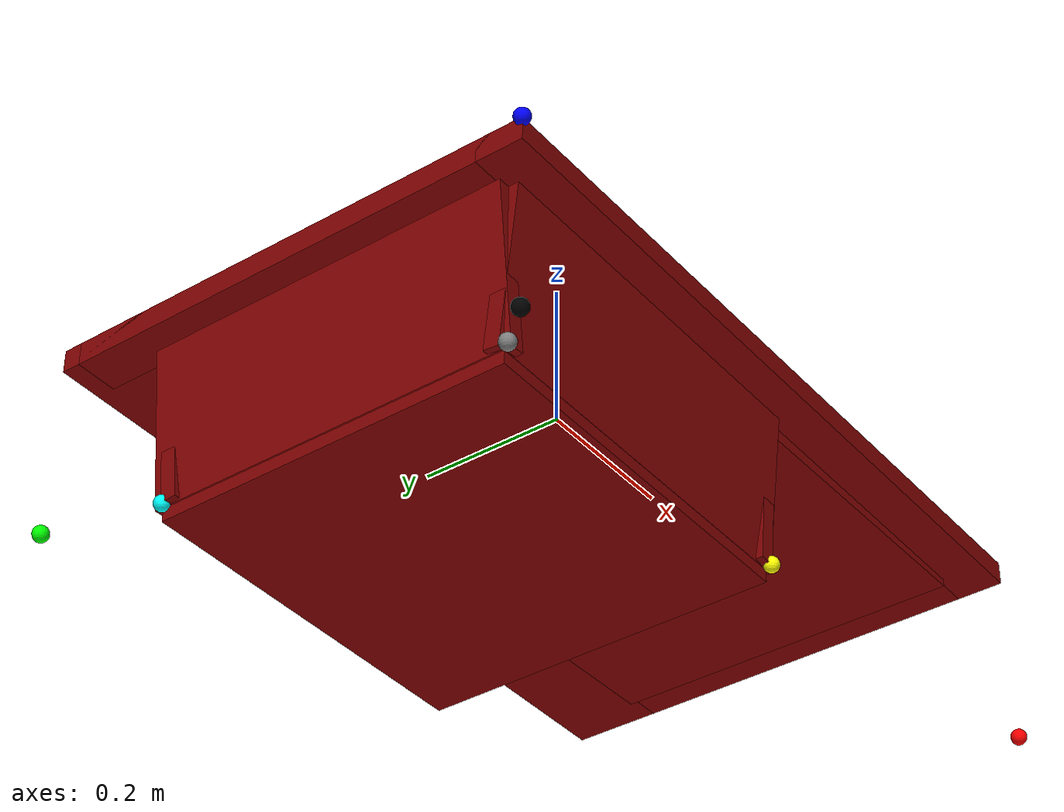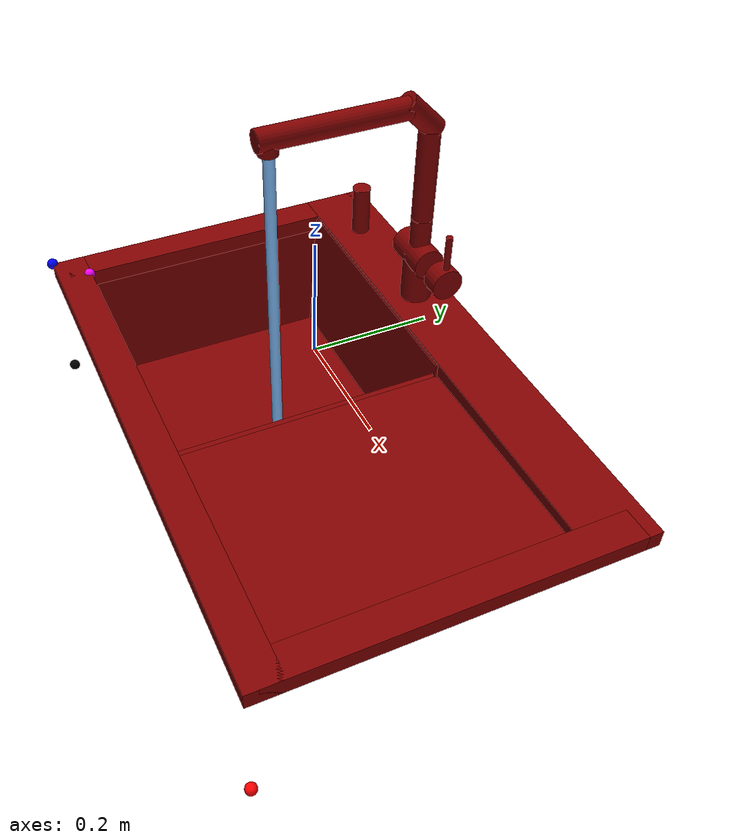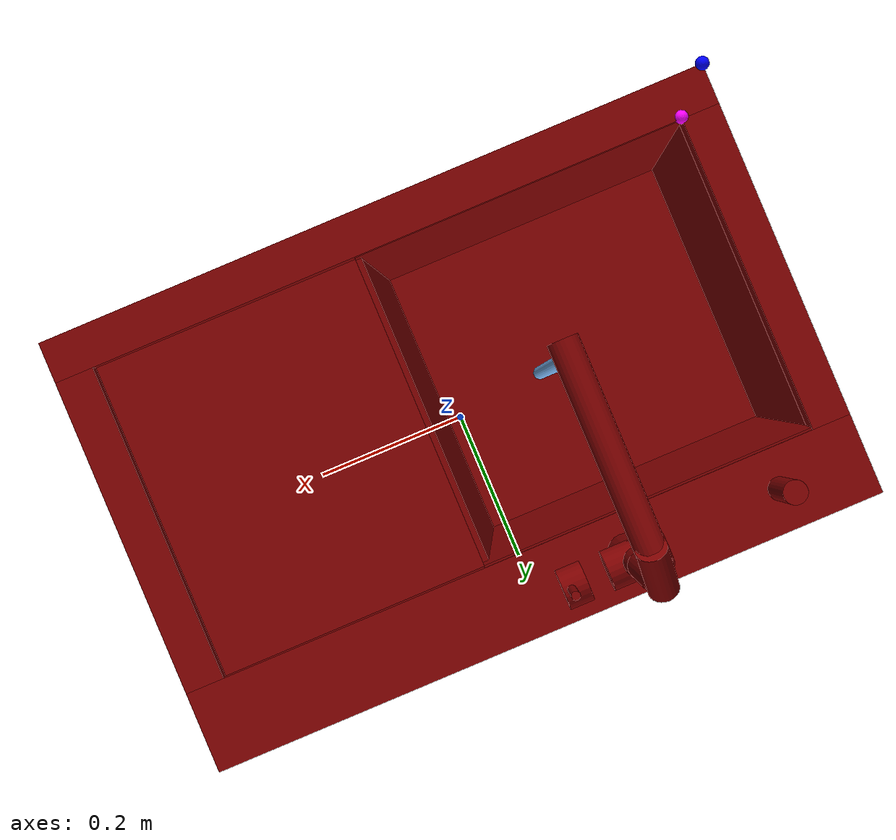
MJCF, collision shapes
<mujoco model="model">
  <compiler angle="radian"/>
  <asset>
    <texture type="2d" name="image0" file="visuals/increased_image0.png"/>
    <texture type="2d" name="image6" file="visuals/increased_image6.png"/>
    <texture type="2d" name="image3" file="visuals/increased_image3.png"/>
    <material name="CHROME" specular="0.5" shininess="0.784646912" rgba="1.000000 1.000000 1.000000 1.000000"/>
    <material name="SINK_LUXOR_r.001" texture="image0" specular="0.5" shininess="0.25"/>
    <material name="black_glossy_plastic" texture="image6" specular="0.5" shininess="0.7147941889999999"/>
    <material name="fr_act_plus_chro" specular="0.5" shininess="0.859834656" rgba="0.351345 0.351345 0.351345 1.000000"/>
    <material name="fr_act_plus_plastick" specular="0.5" shininess="0.25" rgba="0.022759 0.022759 0.022759 1.000000"/>
    <material name="fr_act_plus_surface" texture="image3" specular="0.5" shininess="0.33640005500000003"/>
    <mesh file="visuals/model_0.obj" name="model_0_vis" scale="1 1 1"/>
    <mesh file="visuals/model_1.obj" name="model_1_vis" scale="1 1 1"/>
    <mesh file="visuals/model_2.obj" name="model_2_vis" scale="1 1 1"/>
    <mesh file="visuals/model_3.obj" name="model_3_vis" scale="1 1 1"/>
    <mesh file="visuals/model_4.obj" name="model_4_vis" scale="1 1 1"/>
    <mesh file="visuals/model_5.obj" name="model_5_vis" scale="1 1 1"/>
    <material name="fr_act_plus_perlator_chro" specular="0.5" shininess="0.859834656" rgba="1.000000 1.000000 1.000000 1.000000"/>
    <mesh file="visuals/spout_0.obj" name="spout_0_vis" scale="1 1 1"/>
    <mesh file="visuals/spout_1.obj" name="spout_1_vis" scale="1 1 1"/>
    <mesh file="visuals/spout_2.obj" name="spout_2_vis" scale="1 1 1"/>
    <mesh file="visuals/handle_0.obj" name="handle_0_vis" scale="1 1 1"/>
    <mesh file="visuals/handle_1.obj" name="handle_1_vis" scale="1 1 1"/>
  </asset>
  <default>
    <default class="visual">
      <geom conaffinity="0" contype="0" group="1" type="mesh"/>
    </default>
    <default class="collision">
      <geom group="0" rgba="0.5 0 0 0.5" solimp="0.998 0.998 0.001" solref="0.001 2"/>
    </default>
  </default>
  <worldbody>
    <body>
      <!-- exterior bounding box points -->
      <site rgba="0 0 0 1" size="0.01" pos="-0.5 -0.322 -0.318" name="ext_p0"/>
      <site rgba="1 0 0 1" size="0.01" pos="0.5 -0.322 -0.318" name="ext_px"/>
      <site rgba="0 1 0 1" size="0.01" pos="-0.5 0.324 -0.318" name="ext_py"/>
      <site rgba="0 0 1 1" size="0.01" pos="-0.5 -0.322 -0.065" name="ext_pz"/>
      <!-- interior bounding box points -->
      <site rgba="0.5 0.5 0.5 1" size="0.01" pos="-0.445 -0.265 -0.298" name="int_p0"/>
      <site rgba="1 1 0 1" size="0.01" pos="0.04 -0.265 -0.298" name="int_px"/>
      <site rgba="0 1 1 1" size="0.01" pos="-0.445 0.2 -0.298" name="int_py"/>
      <site rgba="1 0 1 1" size="0.01" pos="-0.445 -0.265 -0.068" name="int_pz"/>
      <body name="object">
        <geom solimp="0.998 0.998 0.001" solref="0.001 1" density="100" friction="0.95 0.3 0.1" type="mesh" mesh="model_0_vis" material="black_glossy_plastic" class="visual"/>
        <geom solimp="0.998 0.998 0.001" solref="0.001 1" density="100" friction="0.95 0.3 0.1" type="mesh" mesh="model_1_vis" material="fr_act_plus_plastick" class="visual"/>
        <geom solimp="0.998 0.998 0.001" solref="0.001 1" density="100" friction="0.95 0.3 0.1" type="mesh" mesh="model_2_vis" material="fr_act_plus_chro" class="visual"/>
        <geom solimp="0.998 0.998 0.001" solref="0.001 1" density="100" friction="0.95 0.3 0.1" type="mesh" mesh="model_3_vis" material="fr_act_plus_surface" class="visual"/>
        <geom solimp="0.998 0.998 0.001" solref="0.001 1" density="100" friction="0.95 0.3 0.1" type="mesh" mesh="model_4_vis" material="CHROME" class="visual"/>
        <geom solimp="0.998 0.998 0.001" solref="0.001 1" density="100" friction="0.95 0.3 0.1" type="mesh" mesh="model_5_vis" material="SINK_LUXOR_r.001" class="visual"/>
        <!-- Bottom -->
        <geom class="collision" type="box" pos="-0.2 -0.027 -0.308" size="0.24 0.23 0.01" name="bottom"/>
        <!-- Left Wall -->
        <geom class="collision" type="box" pos="-0.445 -0.027 -0.185" size="0.01 0.24 0.116" axisangle="0 1 0 -0.11"/>
        <!-- Right Wall -->
        <geom class="collision" type="box" pos="0.04 -0.027 -0.196" size="0.01 0.24 0.105" axisangle="0 1 0 0.11"/>
        <!-- Back Wall -->
        <geom class="collision" type="box" pos="-0.2 0.2 -0.185" size="0.25 0.01 0.116" axisangle="1 0 0 -0.11"/>
        <!-- Front Wall -->
        <geom class="collision" type="box" pos="-0.2 -0.26 -0.185" size="0.25 0.01 0.116" axisangle="1 0 0 0.11"/>
        <!-- Storage -->
        <geom class="collision" type="box" pos="0.25 -0.03 -0.098" size="0.2 0.238 0.01" axisangle="0 1 0 -0.0175"/>
        <!-- Back Ledge -->
        <geom class="collision" type="box" pos="0 0.265 -0.08" size="0.5 0.059 0.015"/>
        <!-- Front Ledge -->
        <geom class="collision" type="box" pos="0 -0.292 -0.08" size="0.5 0.03 0.015"/>
        <!-- Right Ledge -->
        <geom class="collision" type="box" pos="0.472 0 -0.08" size="0.028 0.3 0.015"/>
        <!-- Left Ledge -->
        <geom class="collision" type="box" pos="-0.472 0 -0.08" size="0.028 0.3 0.015"/>
        <!-- Faucet Base -->
        <geom class="collision" type="cylinder" pos="-0.14 0.2635 -0.02" size="0.028 0.05 0"/>
        <geom class="collision" type="cylinder" pos="-0.14 0.2635 0.069" size="0.019 0.028 0"/>
        <!-- Handle Attach Point-->
        <geom class="collision" type="cylinder" pos="-0.1427 0.263 0.0235" size="0.028 0.0428 0" axisangle="0 1 0 1.57"/>
        <!-- Soap Base -->
        <geom class="collision" type="cylinder" pos="-0.37 0.2635 -0.02" size="0.017 0.048 0"/>
        <body name="spout">
          <joint axis="0 0 1" limited="true" name="spout_joint" range="-1.57 1.57" pos="-0.14 0.263 0.098" damping="10"/>
          <geom solimp="0.998 0.998 0.001" solref="0.001 1" density="100" friction="0.95 0.3 0.1" type="mesh" mesh="spout_0_vis" material="fr_act_plus_perlator_chro" class="visual"/>
          <geom solimp="0.998 0.998 0.001" solref="0.001 1" density="100" friction="0.95 0.3 0.1" type="mesh" mesh="spout_1_vis" material="fr_act_plus_chro" class="visual"/>
          <geom solimp="0.998 0.998 0.001" solref="0.001 1" density="100" friction="0.95 0.3 0.1" type="mesh" mesh="spout_2_vis" material="fr_act_plus_surface" class="visual"/>
          <geom class="collision" type="cylinder" pos="-0.14 0.2635 0.18" size="0.019 0.083 0"/>
          <geom class="collision" type="cylinder" pos="-0.14 0.245 0.29" size="0.019 0.04 0" axisangle="1 0 0 0.79"/>
          <geom class="collision" type="cylinder" pos="-0.14 0.093 0.307" size="0.019 0.13 0" axisangle="1 0 0 1.57" name="spout_top"/>
          <geom class="collision" type="cylinder" pos="-0.14 -0.016 0.291" size="0.017 0.01 0"/>
          <site type="cylinder" rgba="0.5 0.75 1 1" pos="-0.14 -0.015 0.0" size="0.01 0.30" name="water"/>
        </body>
        <body name="handle">
          <joint axis="1 0 0" limited="true" name="handle_temp_joint" range="-0.79 0.79" pos="-0.0699 0.2635 0.0235" damping="50"/>
          <joint axis="0 1 0" limited="true" type="hinge" name="handle_joint" range="0 0.52" pos="-0.0699 0.2635 0.04" damping="10"/>
          <geom solimp="0.998 0.998 0.001" solref="0.001 1" density="100" friction="0.95 0.3 0.1" type="mesh" mesh="handle_0_vis" material="fr_act_plus_surface" class="visual"/>
          <geom solimp="0.998 0.998 0.001" solref="0.001 1" density="100" friction="0.95 0.3 0.1" type="mesh" mesh="handle_1_vis" material="fr_act_plus_chro" class="visual"/>
          <!-- Main -->
          <geom class="collision" type="cylinder" pos="-0.053 0.2635 0.0235" size="0.028 0.017 0" axisangle="0 1 0 1.57"/>
          <!-- Handle -->
          <geom class="collision" type="cylinder" pos="-0.047 0.2635 0.08" size="0.006 0.034 0" name="handle_main"/>
        </body>
      </body>
    </body>
  </worldbody>
</mujoco>
